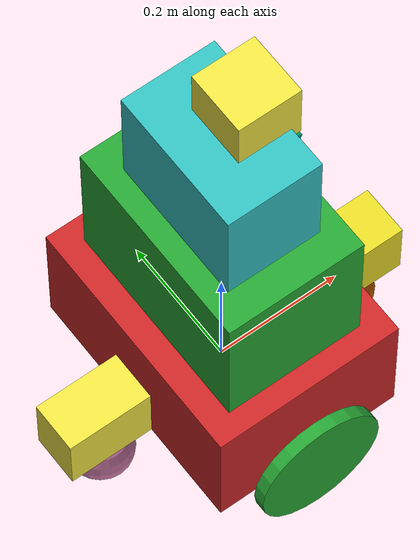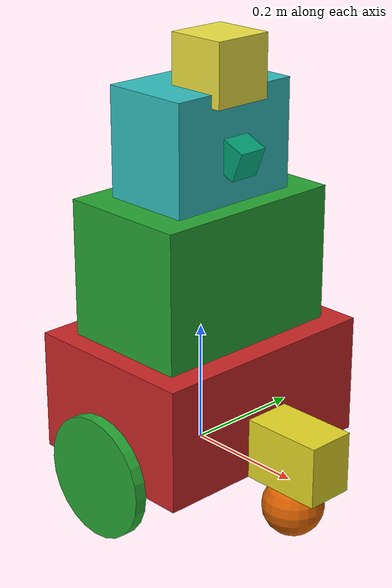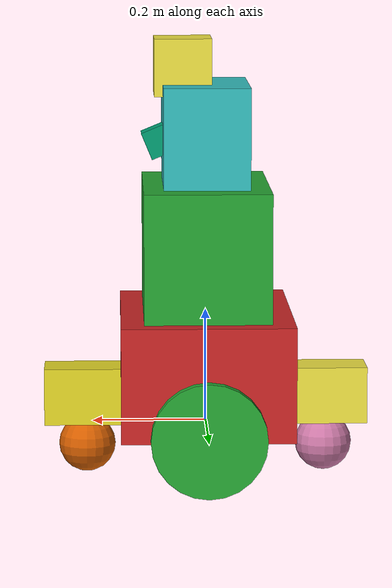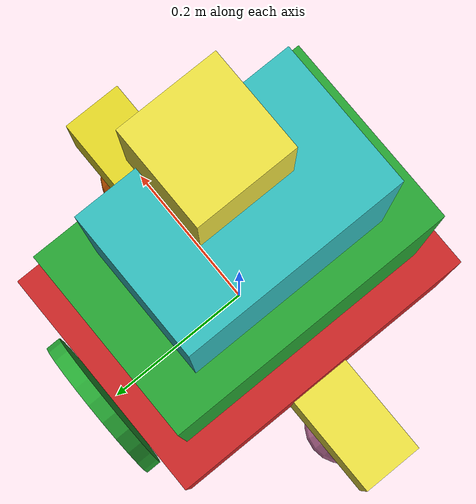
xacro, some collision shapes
<?xml version='1.0'?>

<robot name="my_robot" xmlns:xacro="http://www.ros.org/wiki/xacro">

  <xacro:include filename="$(find my_robot)/urdf/my_robot.gazebo" />

  <link name="robot_footprint"></link>
  <joint name="robot_footprint_joint" type="fixed">
    <origin xyz="0 0 0" rpy="0 0 -1.570796" />
    <parent link="robot_footprint"/>
    <child link="chassis_base" />
  </joint>
  <link name="chassis_base">
    <pose>0 0 0.1 0 0 0</pose>
    <inertial>
      <mass value="10.0"/>
      <origin xyz="0.0 0 0" rpy=" 0 0 0"/>
      <inertia
          ixx="0.1" ixy="0"   ixz="0"
                    iyy="0.1" iyz="0"
                              izz="0.1"/>
    </inertial>

    <collision name="chassis_base_collision">
      <origin xyz="0 0 0.1" rpy=" 0 0 0"/>
      <geometry>
        <box size="0.4 0.3 0.2"/>
      </geometry>
    </collision>

    <visual name="chassis_base_visual">
      <origin xyz="0 0 0.1" rpy=" 0 0 0"/>
      <geometry>
        <box size="0.4 0.3 0.2"/>
      </geometry>

    </visual>
  </link>

  <link name="castor_block_front">
    <inertial>
      <mass value="2.5"/>
      <origin xyz="0.0 0 0" rpy=" 0 0 0"/>
      <inertia
          ixx="0.01" ixy="0"   ixz="0"
                    iyy="0.01" iyz="0"
                              izz="0.01"/>
    </inertial>
    <collision name="castor_block_front_collision">
      <origin xyz="0 0 0" rpy=" 0 0 0"/>
      <geometry>
        <box size="0.08 0.15 .1"/>
      </geometry>
    </collision>

    <visual name="castor_block_front_visual">
      <origin xyz="0 0 0" rpy=" 0 0 0"/>
      <geometry>
        <box size="0.08 0.15 .1"/>
      </geometry>
    </visual>
  </link>

  <joint name="chassis_to_castor_block_front_joint" type="fixed">
    <origin xyz="0.0 0.21 0.05" rpy="0.0 0.0 0.0"/>
    <parent link="chassis_base"/>
    <child link="castor_block_front"/>
  </joint>

  <link name="castor_block_back">
    <inertial>
      <mass value="2.5"/>
      <origin xyz="0.0 0 0" rpy=" 0 0 0"/>
      <inertia
          ixx="0.01" ixy="0"   ixz="0"
                    iyy="0.01" iyz="0"
                              izz="0.01"/>
    </inertial>
    <collision name="castor_block_back_collision">
      <origin xyz="0 0 0" rpy=" 0 0 0"/>
      <geometry>
        <box size="0.08 0.15 .1"/>
      </geometry>
    </collision>

    <visual name="castor_block_back_visual">
      <origin xyz="0 0 0" rpy=" 0 0 0"/>
      <geometry>
        <box size="0.08 0.15 .1"/>
      </geometry>
    </visual>
  </link>

  <joint name="chassis_to_castor_block_back_joint" type="fixed">
    <origin xyz="0.0 -0.21 0.05" rpy="0.0 0.0 0.0"/>
    <parent link="chassis_base"/>
    <child link="castor_block_back"/>
  </joint>

  <link name="chassis_torso">
    <inertial>
      <mass value="1.0"/>
      <origin xyz="0.0 0 0" rpy=" 0 0 0"/>
      <inertia
          ixx="0.1" ixy="0"   ixz="0"
                    iyy="0.1" iyz="0"
                              izz="0.1"/>
    </inertial>
    <collision name="chassis_torso_collision">
      <origin xyz="0 0 0.0" rpy=" 0 0 0"/>
      <geometry>
        <box size="0.33 0.22 0.25"/>
      </geometry>
    </collision>

    <visual name="chassis_torso_visual">
      <origin xyz="0 0 0.0" rpy=" 0 0 0"/>
      <geometry>
        <box size="0.33 0.22 0.25"/>
      </geometry>
    </visual>
  </link>

  <joint name="torso_to_base" type="fixed">
    <origin xyz="0.0 0.0 0.30" rpy="0.0 0.0 0.0"/>
    <parent link="chassis_base"/>
    <child link="chassis_torso"/>
  </joint>

  <link name="castor_front">
    <inertial>
      <mass value="0.05"/>
      <origin xyz="0.0 0 0" rpy=" 0 0 0"/>
      <inertia
          ixx="0.1" ixy="0"   ixz="0"
                    iyy="0.1" iyz="0"
                              izz="0.1"
      />
    </inertial>
    <visual name="caster_front_visual">
      <origin xyz="0.0 0.0 0.0" rpy="0.0 0.0 0.0"/>
      <geometry>
        <sphere radius="0.05"/>
      </geometry>
    </visual>

    <collision name="caster_front_collision">
      <origin xyz="0.0 0.0 0.0" rpy="0.0 0.0 0.0"/>
      <geometry>
        <sphere radius="0.05"/>
      </geometry>
    </collision>

  </link>

  <joint name="castor_to_castor_block_front" type="fixed">
    <origin xyz="0.0 0.0 -0.09" rpy="0.0 0.0 0.0"/>
    <parent link="castor_block_front"/>
    <child link="castor_front"/>
  </joint>

  <link name="castor_back">
    <inertial>
      <mass value="0.05"/>
      <origin xyz="0.0 0 0" rpy=" 0 0 0"/>
      <inertia
          ixx="0.1" ixy="0"   ixz="0"
                    iyy="0.1" iyz="0"
                              izz="0.1"
      />
    </inertial>
    <visual name="caster_back_visual">
      <origin xyz="0.0 0.0 0.0" rpy="0.0 0.0 0.0"/>
      <geometry>
        <sphere radius="0.05"/>
      </geometry>
    </visual>

    <collision name="caster_back_collision">
      <origin xyz="0.0 0.0 0.0" rpy="0.0 0.0 0.0"/>
      <geometry>
        <sphere radius="0.05"/>
      </geometry>
    </collision>

  </link>

  <joint name="castor_to_castor_block_back" type="fixed">
    <origin xyz="0.0 0.0 -0.09" rpy="0.0 0.0 0.0"/>
    <parent link="castor_block_back"/>
    <child link="castor_back"/>
  </joint>

  <link name="side_wheel_right">
    <inertial>
      <origin xyz="0 0 0" rpy="1.5707 0 1.5707"/>
      <mass value="5.0"/>
      <inertia ixx="0.01" ixy="0.0"  ixz="0.0"
                          iyy="0.01" iyz="0.0"
                                     izz="0.01"/>
    </inertial>
    <visual name="side_wheel_right_visual">
      <origin xyz="0 0 0" rpy="1.5707 0 1.5707"/>
      <geometry>
        <cylinder radius="0.1" length="0.02"/>
      </geometry>
    </visual>
    <collision name="side_wheel_right_collision">
      <origin xyz="0 0 0" rpy="1.5707 0 1.5707"/>
      <geometry>
        <cylinder radius="0.1" length="0.02"/>
      </geometry>
    </collision>
  </link>

  <link name="side_wheel_left">
    <inertial>
      <origin xyz="0 0 0" rpy="1.5707 0 1.5707"/>
      <mass value="5.0"/>
      <inertia ixx="0.01" ixy="0.0"  ixz="0.0"
                          iyy="0.01" iyz="0.0"
                                    izz="0.01"/>
    </inertial>
    <visual name="side_wheel_left_visual">
      <origin xyz="0 0 0" rpy="1.5707 0 1.5707"/>
      <geometry>
        <cylinder radius="0.1" length="0.02"/>
      </geometry>
    </visual>

    <collision name="side_wheel_left_collision">
      <origin xyz="0 0 0" rpy="1.5707 0 1.5707"/>
      <geometry>
        <cylinder radius="0.1" length="0.02"/>
      </geometry>
    </collision>
  </link>

  <joint name="right_wheel_hinge" type="continuous">
    <origin xyz="0.22 0.0 0.01" rpy="0.0 0.0 0.0"/>
    <parent link="chassis_base"/>
    <child link="side_wheel_right"/>
    <axis xyz="-1 0 0"/>
    <limit effort="15000" velocity="2500"/>
    <dynamics damping="1.0" friction="1.0"/>
  </joint>

  <joint name="left_wheel_hinge" type="continuous">
    <origin xyz="-0.22 0.0 0.01" rpy="0.0 0.0 0.0"/>
    <parent link="chassis_base"/>
    <child link="side_wheel_left"/>
    <axis xyz="-1 0 0"/>
    <limit effort="15000" velocity="2500"/>
    <dynamics damping="1.0" friction="1.0"/>
  </joint>

<link name="head">
  <inertial>
    <origin xyz="0.0 0.0 0.0" rpy="0.0 0.0 0.0"/>
    <mass value="0.5"/>
    <inertia
          ixx="1e-3" ixy="0.0"  ixz="0.0"
                     iyy="1e-3" iyz="0.0"
                                izz="1e-3"/>
  </inertial>

  <visual name="head_visual">
    <origin xyz="0.0 0.0 0.0" rpy="0.0 0.0 0.0"/>
    <geometry>
      <box size="0.23 0.15 0.2"/>
    </geometry>
  </visual>
  <collision>
    <origin xyz="0.0 0.0 0.0" rpy="0.0 0.0 0.0"/>
    <geometry>
      <box size="0.23 0.15 0.2"/>
    </geometry>
  </collision>
</link>

<!-- This is a fixed joint for now but I want to use this joint to make the head swivel in the future -->

<joint name="neck_joint" type="fixed">
  <origin xyz="0.0 0.0 0.201" rpy="0.0 0.0 0.0"/>
  <parent link="chassis_torso"/>
  <child link="head"/>
  <axis xyz="0 0 1"/>

</joint>

<link name="camera">
  <inertial>
    <origin xyz="0.0 0.0 0.0" rpy="0.0 0.0 0.0"/>
    <mass value="0.1"/>
    <inertia ixx="1e-6" ixy="0.0" ixz="0.0" iyy="1e-6" iyz="0.0" izz="1e-6"/>
  </inertial>

  <visual name="camera_visual">
    <origin xyz="0.0 0.0 0.0" rpy="0.0 0.0 0.0"/>
    <geometry>
      <box size="0.05 0.05 0.05"/>
    </geometry>
  </visual>
  <collision>
    <origin xyz="0.0 0.0 0.0" rpy="0.0 0.0 0.0"/>
    <geometry>
      <box size="0.05 0.05 0.05"/>
    </geometry>
  </collision>
</link>

<joint name="camera_head_joint" type="fixed">
  <origin xyz="0.0 0.08 0.0" rpy="0.0 0.393 1.5707"/>
  <parent link="head"/>
  <child link="camera"/>
  <axis xyz="0 0 0.0"/>
  <limit lower="0.0" upper="0.0" effort="0.0" velocity="0.0"/>
</joint>

<link name="hokuyo">
  <inertial>
    <origin xyz="0.0 0.0 0.0" rpy="0.0 0.0 0.0"/>
    <mass value="1e-5"/>
    <inertia ixx="1e-6" ixy="0.0" ixz="0.0" iyy="1e-6" iyz="0.0" izz="1e-6"/>
  </inertial>

  <visual name="hokuyo_visual">
    <origin xyz="0.0 0.0 0.0" rpy="0.0 0.0 0.0"/>
    <geometry>
      <mesh filename="package://my_robot/meshes/hokuyo.dae"/>
    </geometry>

  </visual>

  <collision>
    <origin xyz="0.0 0.0 0.0" rpy="0.0 0.0 0.0"/>
    <geometry>
      <box size="0.1 0.1 0.1"/>
    </geometry>
  </collision>
</link>

<joint name="hokuyo_joint" type="fixed">
  <origin xyz="0.0 0.04 0.13" rpy="0.0 0.0 1.5707"/>
  <parent link="head"/>
  <child link="hokuyo"/>
  <axis xyz="0.0 1 0.0"/>
</joint>

<gazebo reference="chassis_base">
  <material>Gazebo/Red</material>
</gazebo>

<gazebo reference="side_wheel_left">
  <material>Gazebo/Green</material>
</gazebo>

<gazebo reference="side_wheel_right">
  <material>Gazebo/Green</material>
</gazebo>

<gazebo reference="castor_block_front">
  <material>Gazebo/Yellow</material>
</gazebo>

<gazebo reference="castor">
  <material>Gazebo/Chrome</material>
</gazebo>

<gazebo reference="chassis_torso">
  <material>Gazebo/Green</material>
</gazebo>

<gazebo reference="head">
  <material>Gazebo/Turquoise</material>
</gazebo>

chassis_torso
</robot>
